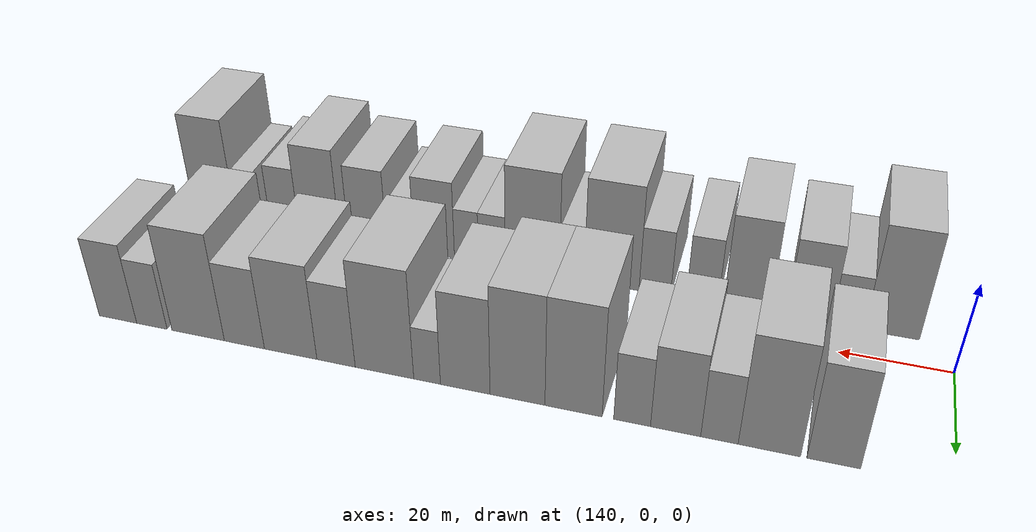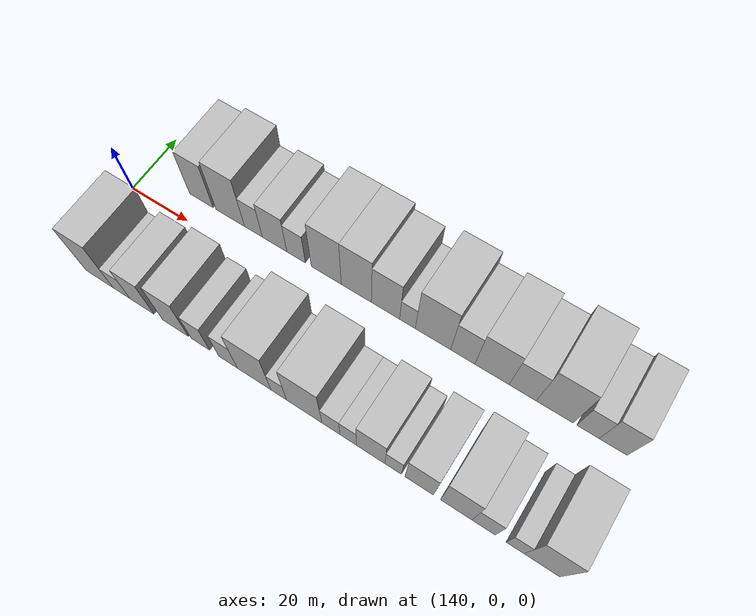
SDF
<sdf version="1.6">
 <world name="default">
  <model name="building_17">
   <static>1</static>
   <pose>159.1878 17.5000 0 0.000000 0.000000 1.570796</pose>
   <link name="link">
    <pose>0 0 10.50 0 0 0</pose>
    <collision name="collision"><geometry><box><size>20.0000 8.5364 21.0000</size></box></geometry></collision>
    <visual name="visual">
     <cast_shadows>0</cast_shadows>
     <geometry><box><size>20.0000 8.5364 21.0000</size></box></geometry>
     <material>
      <script>
       <uri>model://HANNAS_wall/materials/scripts</uri>
       <uri>model://HANNAS_wall/materials/textures</uri>
       <name>vrc/HANNAS_wall</name>
      </script>
     </material>
    </visual>
   </link>
  </model>
  <model name="building_18">
   <static>1</static>
   <pose>169.5330 17.5000 0 0.000000 0.000000 1.570796</pose>
   <link name="link">
    <pose>0 0 12.00 0 0 0</pose>
    <collision name="collision"><geometry><box><size>20.0000 10.1541 24.0000</size></box></geometry></collision>
    <visual name="visual">
     <cast_shadows>0</cast_shadows>
     <geometry><box><size>20.0000 10.1541 24.0000</size></box></geometry>
     <material>
      <script>
       <uri>model://HANNAS_wall/materials/scripts</uri>
       <uri>model://HANNAS_wall/materials/textures</uri>
       <name>vrc/HANNAS_wall</name>
      </script>
     </material>
    </visual>
   </link>
  </model>
  <model name="building_19">
   <static>1</static>
   <pose>177.7087 17.5000 0 0.000000 0.000000 1.570796</pose>
   <link name="link">
    <pose>0 0 7.50 0 0 0</pose>
    <collision name="collision"><geometry><box><size>20.0000 6.1973 15.0000</size></box></geometry></collision>
    <visual name="visual">
     <cast_shadows>0</cast_shadows>
     <geometry><box><size>20.0000 6.1973 15.0000</size></box></geometry>
     <material>
      <script>
       <uri>model://HANNAS_wall/materials/scripts</uri>
       <uri>model://HANNAS_wall/materials/textures</uri>
       <name>vrc/HANNAS_wall</name>
      </script>
     </material>
    </visual>
   </link>
  </model>
  <model name="building_20">
   <static>1</static>
   <pose>185.0354 17.5000 0 0.000000 0.000000 1.570796</pose>
   <link name="link">
    <pose>0 0 9.00 0 0 0</pose>
    <collision name="collision"><geometry><box><size>20.0000 8.4561 18.0000</size></box></geometry></collision>
    <visual name="visual">
     <cast_shadows>0</cast_shadows>
     <geometry><box><size>20.0000 8.4561 18.0000</size></box></geometry>
     <material>
      <script>
       <uri>model://HANNAS_wall/materials/scripts</uri>
       <uri>model://HANNAS_wall/materials/textures</uri>
       <name>vrc/HANNAS_wall</name>
      </script>
     </material>
    </visual>
   </link>
  </model>
  <model name="building_21">
   <static>1</static>
   <pose>192.4085 17.5000 0 0.000000 0.000000 1.570796</pose>
   <link name="link">
    <pose>0 0 7.50 0 0 0</pose>
    <collision name="collision"><geometry><box><size>20.0000 6.2901 15.0000</size></box></geometry></collision>
    <visual name="visual">
     <cast_shadows>0</cast_shadows>
     <geometry><box><size>20.0000 6.2901 15.0000</size></box></geometry>
     <material>
      <script>
       <uri>model://HANNAS_wall/materials/scripts</uri>
       <uri>model://HANNAS_wall/materials/textures</uri>
       <name>vrc/HANNAS_wall</name>
      </script>
     </material>
    </visual>
   </link>
  </model>
  <model name="building_22">
   <static>1</static>
   <pose>202.5575 17.5000 0 0.000000 0.000000 1.570796</pose>
   <link name="link">
    <pose>0 0 12.00 0 0 0</pose>
    <collision name="collision"><geometry><box><size>20.0000 10.0080 24.0000</size></box></geometry></collision>
    <visual name="visual">
     <cast_shadows>0</cast_shadows>
     <geometry><box><size>20.0000 10.0080 24.0000</size></box></geometry>
     <material>
      <script>
       <uri>model://HANNAS_wall/materials/scripts</uri>
       <uri>model://HANNAS_wall/materials/textures</uri>
       <name>vrc/HANNAS_wall</name>
      </script>
     </material>
    </visual>
   </link>
  </model>
  <model name="building_23">
   <static>1</static>
   <pose>212.4708 17.5000 0 0.000000 0.000000 1.570796</pose>
   <link name="link">
    <pose>0 0 12.00 0 0 0</pose>
    <collision name="collision"><geometry><box><size>20.0000 9.8185 24.0000</size></box></geometry></collision>
    <visual name="visual">
     <cast_shadows>0</cast_shadows>
     <geometry><box><size>20.0000 9.8185 24.0000</size></box></geometry>
     <material>
      <script>
       <uri>model://HANNAS_wall/materials/scripts</uri>
       <uri>model://HANNAS_wall/materials/textures</uri>
       <name>vrc/HANNAS_wall</name>
      </script>
     </material>
    </visual>
   </link>
  </model>
  <model name="building_24">
   <static>1</static>
   <pose>221.9110 17.5000 0 0.000000 0.000000 1.570796</pose>
   <link name="link">
    <pose>0 0 10.50 0 0 0</pose>
    <collision name="collision"><geometry><box><size>20.0000 9.0620 21.0000</size></box></geometry></collision>
    <visual name="visual">
     <cast_shadows>0</cast_shadows>
     <geometry><box><size>20.0000 9.0620 21.0000</size></box></geometry>
     <material>
      <script>
       <uri>model://HANNAS_wall/materials/scripts</uri>
       <uri>model://HANNAS_wall/materials/textures</uri>
       <name>vrc/HANNAS_wall</name>
      </script>
     </material>
    </visual>
   </link>
  </model>
  <model name="building_25">
   <static>1</static>
   <pose>228.9191 17.5000 0 0.000000 0.000000 1.570796</pose>
   <link name="link">
    <pose>0 0 6.00 0 0 0</pose>
    <collision name="collision"><geometry><box><size>20.0000 4.9543 12.0000</size></box></geometry></collision>
    <visual name="visual">
     <cast_shadows>0</cast_shadows>
     <geometry><box><size>20.0000 4.9543 12.0000</size></box></geometry>
     <material>
      <script>
       <uri>model://HANNAS_wall/materials/scripts</uri>
       <uri>model://HANNAS_wall/materials/textures</uri>
       <name>vrc/HANNAS_wall</name>
      </script>
     </material>
    </visual>
   </link>
  </model>
  <model name="building_26">
   <static>1</static>
   <pose>236.9182 17.5000 0 0.000000 0.000000 1.570796</pose>
   <link name="link">
    <pose>0 0 12.00 0 0 0</pose>
    <collision name="collision"><geometry><box><size>20.0000 11.0440 24.0000</size></box></geometry></collision>
    <visual name="visual">
     <cast_shadows>0</cast_shadows>
     <geometry><box><size>20.0000 11.0440 24.0000</size></box></geometry>
     <material>
      <script>
       <uri>model://HANNAS_wall/materials/scripts</uri>
       <uri>model://HANNAS_wall/materials/textures</uri>
       <name>vrc/HANNAS_wall</name>
      </script>
     </material>
    </visual>
   </link>
  </model>
  <model name="building_27">
   <static>1</static>
   <pose>246.1286 17.5000 0 0.000000 0.000000 1.570796</pose>
   <link name="link">
    <pose>0 0 9.00 0 0 0</pose>
    <collision name="collision"><geometry><box><size>20.0000 7.3767 18.0000</size></box></geometry></collision>
    <visual name="visual">
     <cast_shadows>0</cast_shadows>
     <geometry><box><size>20.0000 7.3767 18.0000</size></box></geometry>
     <material>
      <script>
       <uri>model://HANNAS_wall/materials/scripts</uri>
       <uri>model://HANNAS_wall/materials/textures</uri>
       <name>vrc/HANNAS_wall</name>
      </script>
     </material>
    </visual>
   </link>
  </model>
  <model name="building_28">
   <static>1</static>
   <pose>254.9602 17.5000 0 0.000000 0.000000 1.570796</pose>
   <link name="link">
    <pose>0 0 10.50 0 0 0</pose>
    <collision name="collision"><geometry><box><size>20.0000 10.2866 21.0000</size></box></geometry></collision>
    <visual name="visual">
     <cast_shadows>0</cast_shadows>
     <geometry><box><size>20.0000 10.2866 21.0000</size></box></geometry>
     <material>
      <script>
       <uri>model://HANNAS_wall/materials/scripts</uri>
       <uri>model://HANNAS_wall/materials/textures</uri>
       <name>vrc/HANNAS_wall</name>
      </script>
     </material>
    </visual>
   </link>
  </model>
  <model name="building_29">
   <static>1</static>
   <pose>264.1082 17.5000 0 0.000000 0.000000 1.570796</pose>
   <link name="link">
    <pose>0 0 9.00 0 0 0</pose>
    <collision name="collision"><geometry><box><size>20.0000 8.0094 18.0000</size></box></geometry></collision>
    <visual name="visual">
     <cast_shadows>0</cast_shadows>
     <geometry><box><size>20.0000 8.0094 18.0000</size></box></geometry>
     <material>
      <script>
       <uri>model://HANNAS_wall/materials/scripts</uri>
       <uri>model://HANNAS_wall/materials/textures</uri>
       <name>vrc/HANNAS_wall</name>
      </script>
     </material>
    </visual>
   </link>
  </model>
  <model name="building_30">
   <static>1</static>
   <pose>273.4680 17.5000 0 0.000000 0.000000 1.570796</pose>
   <link name="link">
    <pose>0 0 12.00 0 0 0</pose>
    <collision name="collision"><geometry><box><size>20.0000 10.7102 24.0000</size></box></geometry></collision>
    <visual name="visual">
     <cast_shadows>0</cast_shadows>
     <geometry><box><size>20.0000 10.7102 24.0000</size></box></geometry>
     <material>
      <script>
       <uri>model://HANNAS_wall/materials/scripts</uri>
       <uri>model://HANNAS_wall/materials/textures</uri>
       <name>vrc/HANNAS_wall</name>
      </script>
     </material>
    </visual>
   </link>
  </model>
  <model name="building_31">
   <static>1</static>
   <pose>282.9808 17.5000 0 0.000000 0.000000 1.570796</pose>
   <link name="link">
    <pose>0 0 7.50 0 0 0</pose>
    <collision name="collision"><geometry><box><size>20.0000 6.3152 15.0000</size></box></geometry></collision>
    <visual name="visual">
     <cast_shadows>0</cast_shadows>
     <geometry><box><size>20.0000 6.3152 15.0000</size></box></geometry>
     <material>
      <script>
       <uri>model://HANNAS_wall/materials/scripts</uri>
       <uri>model://HANNAS_wall/materials/textures</uri>
       <name>vrc/HANNAS_wall</name>
      </script>
     </material>
    </visual>
   </link>
  </model>
  <model name="building_32">
   <static>1</static>
   <pose>290.0704 17.5000 0 0.000000 0.000000 1.570796</pose>
   <link name="link">
    <pose>0 0 9.00 0 0 0</pose>
    <collision name="collision"><geometry><box><size>20.0000 7.8642 18.0000</size></box></geometry></collision>
    <visual name="visual">
     <cast_shadows>0</cast_shadows>
     <geometry><box><size>20.0000 7.8642 18.0000</size></box></geometry>
     <material>
      <script>
       <uri>model://HANNAS_wall/materials/scripts</uri>
       <uri>model://HANNAS_wall/materials/textures</uri>
       <name>vrc/HANNAS_wall</name>
      </script>
     </material>
    </visual>
   </link>
  </model>
  <model name="building_49">
   <static>1</static>
   <pose>150.8816 -17.5000 0 0.000000 0.000000 1.570796</pose>
   <link name="link">
    <pose>0 0 12.00 0 0 0</pose>
    <collision name="collision"><geometry><box><size>20.0000 9.8102 24.0000</size></box></geometry></collision>
    <visual name="visual">
     <cast_shadows>0</cast_shadows>
     <geometry><box><size>20.0000 9.8102 24.0000</size></box></geometry>
     <material>
      <script>
       <uri>model://HANNAS_wall/materials/scripts</uri>
       <uri>model://HANNAS_wall/materials/textures</uri>
       <name>vrc/HANNAS_wall</name>
      </script>
     </material>
    </visual>
   </link>
  </model>
  <model name="building_50">
   <static>1</static>
   <pose>158.7766 -17.5000 0 0.000000 0.000000 1.570796</pose>
   <link name="link">
    <pose>0 0 6.00 0 0 0</pose>
    <collision name="collision"><geometry><box><size>20.0000 5.9797 12.0000</size></box></geometry></collision>
    <visual name="visual">
     <cast_shadows>0</cast_shadows>
     <geometry><box><size>20.0000 5.9797 12.0000</size></box></geometry>
     <material>
      <script>
       <uri>model://HANNAS_wall/materials/scripts</uri>
       <uri>model://HANNAS_wall/materials/textures</uri>
       <name>vrc/HANNAS_wall</name>
      </script>
     </material>
    </visual>
   </link>
  </model>
  <model name="building_51">
   <static>1</static>
   <pose>165.9112 -17.5000 0 0.000000 0.000000 1.570796</pose>
   <link name="link">
    <pose>0 0 9.00 0 0 0</pose>
    <collision name="collision"><geometry><box><size>20.0000 8.2895 18.0000</size></box></geometry></collision>
    <visual name="visual">
     <cast_shadows>0</cast_shadows>
     <geometry><box><size>20.0000 8.2895 18.0000</size></box></geometry>
     <material>
      <script>
       <uri>model://HANNAS_wall/materials/scripts</uri>
       <uri>model://HANNAS_wall/materials/textures</uri>
       <name>vrc/HANNAS_wall</name>
      </script>
     </material>
    </visual>
   </link>
  </model>
  <model name="building_52">
   <static>1</static>
   <pose>177.4516 -17.5000 0 0.000000 0.000000 1.570796</pose>
   <link name="link">
    <pose>0 0 10.50 0 0 0</pose>
    <collision name="collision"><geometry><box><size>20.0000 8.7913 21.0000</size></box></geometry></collision>
    <visual name="visual">
     <cast_shadows>0</cast_shadows>
     <geometry><box><size>20.0000 8.7913 21.0000</size></box></geometry>
     <material>
      <script>
       <uri>model://HANNAS_wall/materials/scripts</uri>
       <uri>model://HANNAS_wall/materials/textures</uri>
       <name>vrc/HANNAS_wall</name>
      </script>
     </material>
    </visual>
   </link>
  </model>
  <model name="building_53">
   <static>1</static>
   <pose>185.8971 -17.5000 0 0.000000 0.000000 1.570796</pose>
   <link name="link">
    <pose>0 0 7.50 0 0 0</pose>
    <collision name="collision"><geometry><box><size>20.0000 6.0997 15.0000</size></box></geometry></collision>
    <visual name="visual">
     <cast_shadows>0</cast_shadows>
     <geometry><box><size>20.0000 6.0997 15.0000</size></box></geometry>
     <material>
      <script>
       <uri>model://HANNAS_wall/materials/scripts</uri>
       <uri>model://HANNAS_wall/materials/textures</uri>
       <name>vrc/HANNAS_wall</name>
      </script>
     </material>
    </visual>
   </link>
  </model>
  <model name="building_54">
   <static>1</static>
   <pose>195.0260 -17.5000 0 0.000000 0.000000 1.570796</pose>
   <link name="link">
    <pose>0 0 7.50 0 0 0</pose>
    <collision name="collision"><geometry><box><size>20.0000 6.1582 15.0000</size></box></geometry></collision>
    <visual name="visual">
     <cast_shadows>0</cast_shadows>
     <geometry><box><size>20.0000 6.1582 15.0000</size></box></geometry>
     <material>
      <script>
       <uri>model://HANNAS_wall/materials/scripts</uri>
       <uri>model://HANNAS_wall/materials/textures</uri>
       <name>vrc/HANNAS_wall</name>
      </script>
     </material>
    </visual>
   </link>
  </model>
  <model name="building_55">
   <static>1</static>
   <pose>203.5397 -17.5000 0 0.000000 0.000000 1.570796</pose>
   <link name="link">
    <pose>0 0 12.00 0 0 0</pose>
    <collision name="collision"><geometry><box><size>20.0000 10.8690 24.0000</size></box></geometry></collision>
    <visual name="visual">
     <cast_shadows>0</cast_shadows>
     <geometry><box><size>20.0000 10.8690 24.0000</size></box></geometry>
     <material>
      <script>
       <uri>model://HANNAS_wall/materials/scripts</uri>
       <uri>model://HANNAS_wall/materials/textures</uri>
       <name>vrc/HANNAS_wall</name>
      </script>
     </material>
    </visual>
   </link>
  </model>
  <model name="building_56">
   <static>1</static>
   <pose>211.4464 -17.5000 0 0.000000 0.000000 1.570796</pose>
   <link name="link">
    <pose>0 0 6.00 0 0 0</pose>
    <collision name="collision"><geometry><box><size>20.0000 4.9444 12.0000</size></box></geometry></collision>
    <visual name="visual">
     <cast_shadows>0</cast_shadows>
     <geometry><box><size>20.0000 4.9444 12.0000</size></box></geometry>
     <material>
      <script>
       <uri>model://HANNAS_wall/materials/scripts</uri>
       <uri>model://HANNAS_wall/materials/textures</uri>
       <name>vrc/HANNAS_wall</name>
      </script>
     </material>
    </visual>
   </link>
  </model>
  <model name="building_57">
   <static>1</static>
   <pose>219.4408 -17.5000 0 0.000000 0.000000 1.570796</pose>
   <link name="link">
    <pose>0 0 12.00 0 0 0</pose>
    <collision name="collision"><geometry><box><size>20.0000 11.0442 24.0000</size></box></geometry></collision>
    <visual name="visual">
     <cast_shadows>0</cast_shadows>
     <geometry><box><size>20.0000 11.0442 24.0000</size></box></geometry>
     <material>
      <script>
       <uri>model://HANNAS_wall/materials/scripts</uri>
       <uri>model://HANNAS_wall/materials/textures</uri>
       <name>vrc/HANNAS_wall</name>
      </script>
     </material>
    </visual>
   </link>
  </model>
  <model name="building_58">
   <static>1</static>
   <pose>227.7485 -17.5000 0 0.000000 0.000000 1.570796</pose>
   <link name="link">
    <pose>0 0 6.00 0 0 0</pose>
    <collision name="collision"><geometry><box><size>20.0000 5.5713 12.0000</size></box></geometry></collision>
    <visual name="visual">
     <cast_shadows>0</cast_shadows>
     <geometry><box><size>20.0000 5.5713 12.0000</size></box></geometry>
     <material>
      <script>
       <uri>model://HANNAS_wall/materials/scripts</uri>
       <uri>model://HANNAS_wall/materials/textures</uri>
       <name>vrc/HANNAS_wall</name>
      </script>
     </material>
    </visual>
   </link>
  </model>
  <model name="building_59">
   <static>1</static>
   <pose>233.0287 -17.5000 0 0.000000 0.000000 1.570796</pose>
   <link name="link">
    <pose>0 0 6.00 0 0 0</pose>
    <collision name="collision"><geometry><box><size>20.0000 4.9889 12.0000</size></box></geometry></collision>
    <visual name="visual">
     <cast_shadows>0</cast_shadows>
     <geometry><box><size>20.0000 4.9889 12.0000</size></box></geometry>
     <material>
      <script>
       <uri>model://HANNAS_wall/materials/scripts</uri>
       <uri>model://HANNAS_wall/materials/textures</uri>
       <name>vrc/HANNAS_wall</name>
      </script>
     </material>
    </visual>
   </link>
  </model>
  <model name="building_60">
   <static>1</static>
   <pose>239.7681 -17.5000 0 0.000000 0.000000 1.570796</pose>
   <link name="link">
    <pose>0 0 9.00 0 0 0</pose>
    <collision name="collision"><geometry><box><size>20.0000 8.4899 18.0000</size></box></geometry></collision>
    <visual name="visual">
     <cast_shadows>0</cast_shadows>
     <geometry><box><size>20.0000 8.4899 18.0000</size></box></geometry>
     <material>
      <script>
       <uri>model://HANNAS_wall/materials/scripts</uri>
       <uri>model://HANNAS_wall/materials/textures</uri>
       <name>vrc/HANNAS_wall</name>
      </script>
     </material>
    </visual>
   </link>
  </model>
  <model name="building_61">
   <static>1</static>
   <pose>246.4639 -17.5000 0 0.000000 0.000000 1.570796</pose>
   <link name="link">
    <pose>0 0 6.00 0 0 0</pose>
    <collision name="collision"><geometry><box><size>20.0000 4.9017 12.0000</size></box></geometry></collision>
    <visual name="visual">
     <cast_shadows>0</cast_shadows>
     <geometry><box><size>20.0000 4.9017 12.0000</size></box></geometry>
     <material>
      <script>
       <uri>model://HANNAS_wall/materials/scripts</uri>
       <uri>model://HANNAS_wall/materials/textures</uri>
       <name>vrc/HANNAS_wall</name>
      </script>
     </material>
    </visual>
   </link>
  </model>
  <model name="building_62">
   <static>1</static>
   <pose>254.0676 -17.5000 0 0.000000 0.000000 1.570796</pose>
   <link name="link">
    <pose>0 0 9.00 0 0 0</pose>
    <collision name="collision"><geometry><box><size>20.0000 8.3056 18.0000</size></box></geometry></collision>
    <visual name="visual">
     <cast_shadows>0</cast_shadows>
     <geometry><box><size>20.0000 8.3056 18.0000</size></box></geometry>
     <material>
      <script>
       <uri>model://HANNAS_wall/materials/scripts</uri>
       <uri>model://HANNAS_wall/materials/textures</uri>
       <name>vrc/HANNAS_wall</name>
      </script>
     </material>
    </visual>
   </link>
  </model>
  <model name="building_63">
   <static>1</static>
   <pose>264.7147 -17.5000 0 0.000000 0.000000 1.570796</pose>
   <link name="link">
    <pose>0 0 10.50 0 0 0</pose>
    <collision name="collision"><geometry><box><size>20.0000 8.9885 21.0000</size></box></geometry></collision>
    <visual name="visual">
     <cast_shadows>0</cast_shadows>
     <geometry><box><size>20.0000 8.9885 21.0000</size></box></geometry>
     <material>
      <script>
       <uri>model://HANNAS_wall/materials/scripts</uri>
       <uri>model://HANNAS_wall/materials/textures</uri>
       <name>vrc/HANNAS_wall</name>
      </script>
     </material>
    </visual>
   </link>
  </model>
  <model name="building_64">
   <static>1</static>
   <pose>272.4345 -17.5000 0 0.000000 0.000000 1.570796</pose>
   <link name="link">
    <pose>0 0 7.50 0 0 0</pose>
    <collision name="collision"><geometry><box><size>20.0000 6.4512 15.0000</size></box></geometry></collision>
    <visual name="visual">
     <cast_shadows>0</cast_shadows>
     <geometry><box><size>20.0000 6.4512 15.0000</size></box></geometry>
     <material>
      <script>
       <uri>model://HANNAS_wall/materials/scripts</uri>
       <uri>model://HANNAS_wall/materials/textures</uri>
       <name>vrc/HANNAS_wall</name>
      </script>
     </material>
    </visual>
   </link>
  </model>
  <model name="building_65">
   <static>1</static>
   <pose>281.0928 -17.5000 0 0.000000 0.000000 1.570796</pose>
   <link name="link">
    <pose>0 0 6.00 0 0 0</pose>
    <collision name="collision"><geometry><box><size>20.0000 4.8652 12.0000</size></box></geometry></collision>
    <visual name="visual">
     <cast_shadows>0</cast_shadows>
     <geometry><box><size>20.0000 4.8652 12.0000</size></box></geometry>
     <material>
      <script>
       <uri>model://HANNAS_wall/materials/scripts</uri>
       <uri>model://HANNAS_wall/materials/textures</uri>
       <name>vrc/HANNAS_wall</name>
      </script>
     </material>
    </visual>
   </link>
  </model>
  <model name="building_66">
   <static>1</static>
   <pose>288.3588 -17.5000 0 0.000000 0.000000 1.570796</pose>
   <link name="link">
    <pose>0 0 12.00 0 0 0</pose>
    <collision name="collision"><geometry><box><size>20.0000 9.6667 24.0000</size></box></geometry></collision>
    <visual name="visual">
     <cast_shadows>0</cast_shadows>
     <geometry><box><size>20.0000 9.6667 24.0000</size></box></geometry>
     <material>
      <script>
       <uri>model://HANNAS_wall/materials/scripts</uri>
       <uri>model://HANNAS_wall/materials/textures</uri>
       <name>vrc/HANNAS_wall</name>
      </script>
     </material>
    </visual>
   </link>
  </model>
 </world>
</sdf>
